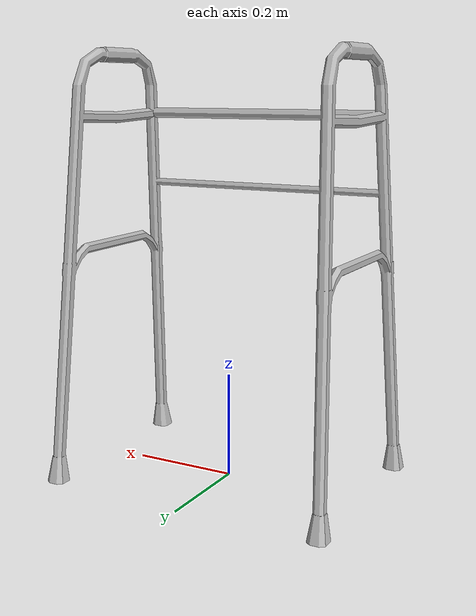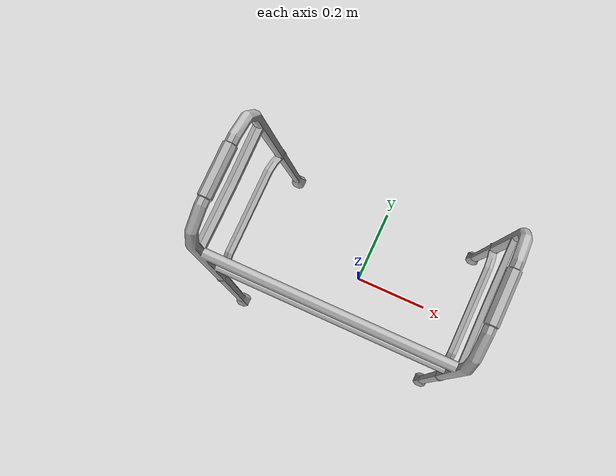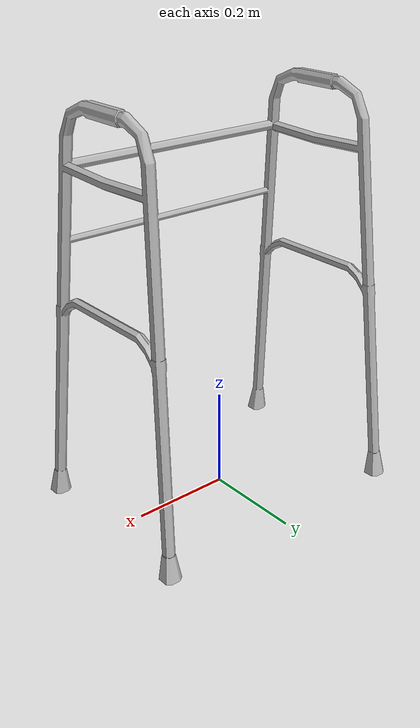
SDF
<?xml version='1.0' encoding='utf-8'?>
<sdf version="1.6">
  <model name="Walker">
   <static>true</static>
    <link name="body">
      <pose>0 0 0 0 0 0</pose>

      <visual name="visual">
        <geometry>
          <mesh>
            <uri>model://Walker/meshes/Walker.obj</uri>
          </mesh>
        </geometry>
      </visual>

      <collision name="collision">
        <geometry>
          <mesh>
            <uri>model://Walker/meshes/Walker.dae</uri>
          </mesh>
        </geometry>
      </collision>

    </link>
  </model>
</sdf>
